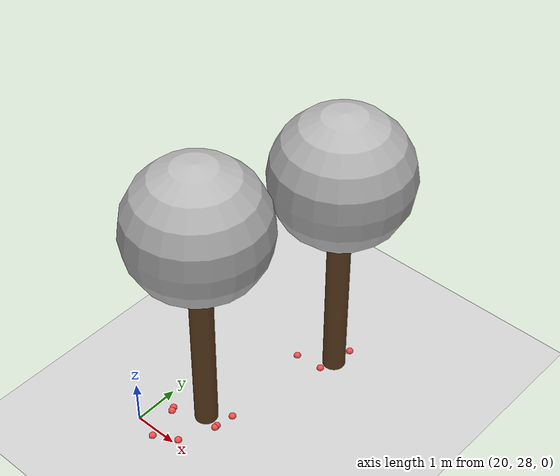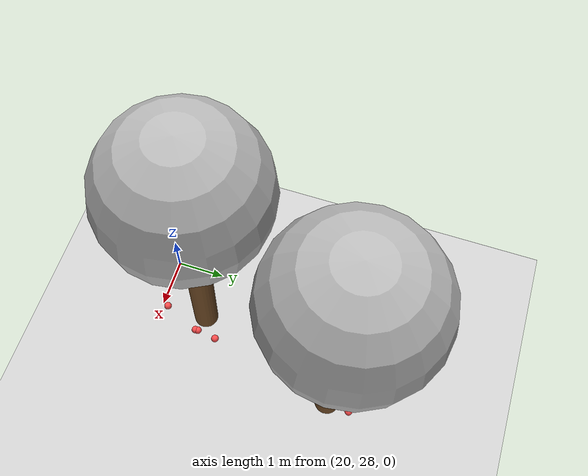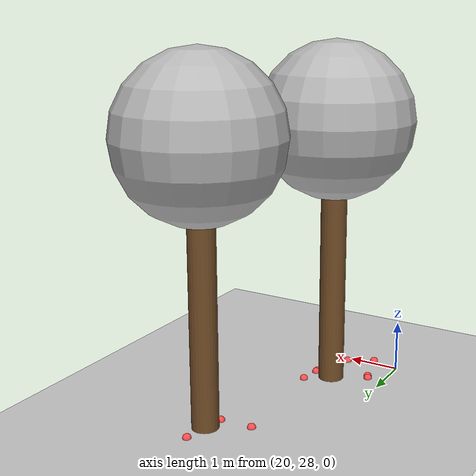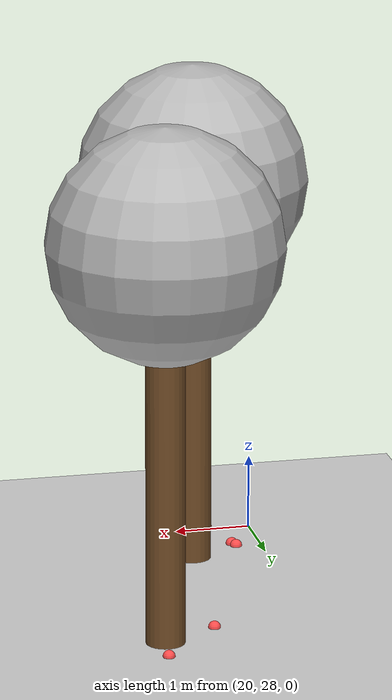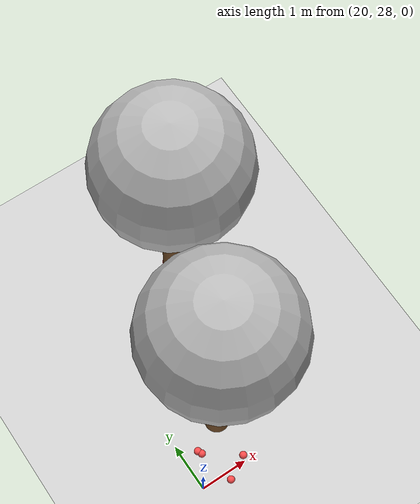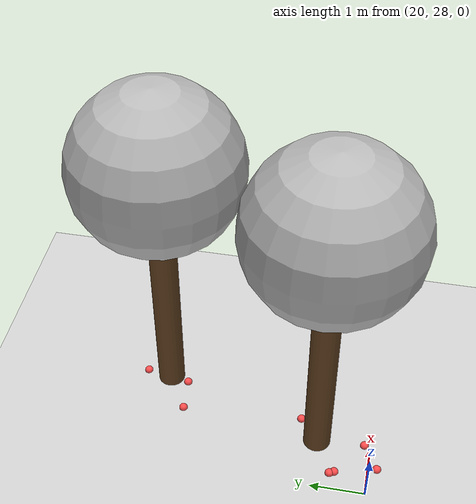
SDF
<sdf version="1.7">
 <world name="default">
  <model name="ground_plane">
   <static>1</static>
   <link name="link">
    <collision name="collision">
     <geometry><plane><normal>0 0 1</normal><size>100 100</size></plane></geometry>
     <surface>
      <contact><collide_bitmask>65535</collide_bitmask></contact>
      <friction><ode><mu>100</mu><mu2>50</mu2></ode></friction>
     </surface>
    </collision>
    <visual name="visual">
     <cast_shadows>0</cast_shadows>
     <geometry><plane><normal>0 0 1</normal><size>100 100</size></plane></geometry>
     <material>
      <script><uri>file://media/materials/scripts/gazebo.material</uri><name>Gazebo/Grey</name></script>
     </material>
    </visual>
   </link>
  </model>
  <model name="tree_simple_23">
   <static>1</static>
   <link name="link">
    <pose>0 0 0.1 0 -0 0</pose>
    <inertial>
     <mass>666</mass>
     <inertia>
      <ixx>0.0861167</ixx>
      <ixy>0</ixy>
      <ixz>0</ixz>
      <iyy>0.0861167</iyy>
      <iyz>0</iyz>
      <izz>0.0861167</izz>
     </inertia>
    </inertial>
    <collision name="collision_trunk">
     <pose>0 0 2 0 -0 0</pose>
     <geometry><cylinder><radius>0.25</radius><length>4</length></cylinder></geometry>
     <surface>
      <contact>
       <poissons_ratio>0.347</poissons_ratio>
       <elastic_modulus>8.8e+09</elastic_modulus>
       <ode><kp>100000</kp><kd>100</kd><max_vel>100</max_vel><min_depth>0.001</min_depth></ode>
      </contact>
      <friction>
       <torsional>
        <coefficient>1</coefficient>
        <use_patch_radius>0</use_patch_radius>
        <surface_radius>0.01</surface_radius>
       </torsional>
      </friction>
     </surface>
    </collision>
    <collision name="collision_treetop">
     <pose>0 0 5.2 0 -0 0</pose>
     <geometry><sphere><radius>1.5</radius></sphere></geometry>
     <surface>
      <contact>
       <poissons_ratio>0.347</poissons_ratio>
       <elastic_modulus>8.8e+09</elastic_modulus>
       <ode><kp>100000</kp><kd>100</kd><max_vel>100</max_vel><min_depth>0.001</min_depth></ode>
      </contact>
      <friction>
       <torsional>
        <coefficient>1</coefficient>
        <use_patch_radius>0</use_patch_radius>
        <surface_radius>0.01</surface_radius>
       </torsional>
      </friction>
     </surface>
    </collision>
    <visual name="trunk">
     <pose>0 0 2 0 -0 0</pose>
     <geometry><cylinder><radius>0.25</radius><length>4</length></cylinder></geometry>
     <material>
      <script>
       <uri>model://tree_simple/scripts</uri>
       <uri>model://tree_simple/materials/textures</uri>
       <name>TreeSimple/Trunk</name>
      </script>
     </material>
    </visual>
    <visual name="treetop">
     <pose>0 0 5.2 0 -0 0</pose>
     <geometry><sphere><radius>1.5</radius></sphere></geometry>
     <material>
      <script>
       <uri>model://tree_simple/scripts</uri>
       <uri>model://tree_simple/materials/textures</uri>
       <name>TreeSimple/Treetop</name>
      </script>
     </material>
    </visual>
   </link>
   <pose>22 32 -0.1 0 -0 0</pose>
  </model>
  <model name="tree_simple_30">
   <static>1</static>
   <link name="link">
    <pose>0 0 0.1 0 -0 0</pose>
    <inertial>
     <mass>666</mass>
     <inertia>
      <ixx>0.0861167</ixx>
      <ixy>0</ixy>
      <ixz>0</ixz>
      <iyy>0.0861167</iyy>
      <iyz>0</iyz>
      <izz>0.0861167</izz>
     </inertia>
    </inertial>
    <collision name="collision_trunk">
     <pose>0 0 2 0 -0 0</pose>
     <geometry><cylinder><radius>0.25</radius><length>4</length></cylinder></geometry>
     <surface>
      <contact>
       <poissons_ratio>0.347</poissons_ratio>
       <elastic_modulus>8.8e+09</elastic_modulus>
       <ode><kp>100000</kp><kd>100</kd><max_vel>100</max_vel><min_depth>0.001</min_depth></ode>
      </contact>
      <friction>
       <torsional>
        <coefficient>1</coefficient>
        <use_patch_radius>0</use_patch_radius>
        <surface_radius>0.01</surface_radius>
       </torsional>
      </friction>
     </surface>
    </collision>
    <collision name="collision_treetop">
     <pose>0 0 5.2 0 -0 0</pose>
     <geometry><sphere><radius>1.5</radius></sphere></geometry>
     <surface>
      <contact>
       <poissons_ratio>0.347</poissons_ratio>
       <elastic_modulus>8.8e+09</elastic_modulus>
       <ode><kp>100000</kp><kd>100</kd><max_vel>100</max_vel><min_depth>0.001</min_depth></ode>
      </contact>
      <friction>
       <torsional>
        <coefficient>1</coefficient>
        <use_patch_radius>0</use_patch_radius>
        <surface_radius>0.01</surface_radius>
       </torsional>
      </friction>
     </surface>
    </collision>
    <visual name="trunk">
     <pose>0 0 2 0 -0 0</pose>
     <geometry><cylinder><radius>0.25</radius><length>4</length></cylinder></geometry>
     <material>
      <script>
       <uri>model://tree_simple/scripts</uri>
       <uri>model://tree_simple/materials/textures</uri>
       <name>TreeSimple/Trunk</name>
      </script>
     </material>
    </visual>
    <visual name="treetop">
     <pose>0 0 5.2 0 -0 0</pose>
     <geometry><sphere><radius>1.5</radius></sphere></geometry>
     <material>
      <script>
       <uri>model://tree_simple/scripts</uri>
       <uri>model://tree_simple/materials/textures</uri>
       <name>TreeSimple/Treetop</name>
      </script>
     </material>
    </visual>
   </link>
   <pose>21 29 -0.1 0 -0 0</pose>
  </model>
  <model name="seed_red_93">
   <link name="link">
    <inertial>
     <mass>1</mass>
     <inertia><ixx>0.1</ixx><ixy>0</ixy><ixz>0</ixz><iyy>0.1</iyy><iyz>0</iyz><izz>0.1</izz></inertia>
    </inertial>
    <visual name="visual">
     <geometry><sphere><radius>0.08</radius></sphere></geometry>
     <material>
      <script><name>Gazebo/Grey</name><uri>file://media/materials/scripts/gazebo.material</uri></script>
      <shader type="pixel"><normal_map>__default__</normal_map></shader>
      <ambient>1 0.3 0.3 1</ambient>
      <diffuse>0.7 0.7 0.7 1</diffuse>
      <specular>0.01 0.01 0.01 1</specular>
      <emissive>0 0 0 1</emissive>
     </material>
    </visual>
    <collision name="collision">
     <geometry><sphere><radius>0.0005</radius></sphere></geometry>
     <surface>
      <friction>
       <ode><mu>1</mu><mu2>1</mu2><fdir1>0 0 0</fdir1><slip1>0</slip1><slip2>0</slip2></ode>
       <torsional>
        <coefficient>1</coefficient>
        <patch_radius>0</patch_radius>
        <surface_radius>0</surface_radius>
        <use_patch_radius>1</use_patch_radius>
        <ode><slip>0</slip></ode>
       </torsional>
      </friction>
      <bounce><restitution_coefficient>0</restitution_coefficient><threshold>1e+06</threshold></bounce>
      <contact>
       <collide_without_contact>0</collide_without_contact>
       <collide_without_contact_bitmask>1</collide_without_contact_bitmask>
       <collide_bitmask>1</collide_bitmask>
       <ode>
        <soft_cfm>0</soft_cfm>
        <soft_erp>0.2</soft_erp>
        <kp>1e+13</kp>
        <kd>1</kd>
        <max_vel>0.01</max_vel>
        <min_depth>0</min_depth>
       </ode>
       <bullet>
        <split_impulse>1</split_impulse>
        <split_impulse_penetration_threshold>-0.01</split_impulse_penetration_threshold>
        <soft_cfm>0</soft_cfm>
        <soft_erp>0.2</soft_erp>
        <kp>1e+13</kp>
        <kd>1</kd>
       </bullet>
      </contact>
     </surface>
    </collision>
   </link>
   <static>0</static>
   <pose>21.2793 31.6039 0.0005 0 -0 0</pose>
  </model>
  <model name="seed_red_96">
   <link name="link">
    <inertial>
     <mass>1</mass>
     <inertia><ixx>0.1</ixx><ixy>0</ixy><ixz>0</ixz><iyy>0.1</iyy><iyz>0</iyz><izz>0.1</izz></inertia>
    </inertial>
    <visual name="visual">
     <geometry><sphere><radius>0.08</radius></sphere></geometry>
     <material>
      <script><name>Gazebo/Grey</name><uri>file://media/materials/scripts/gazebo.material</uri></script>
      <shader type="pixel"><normal_map>__default__</normal_map></shader>
      <ambient>1 0.3 0.3 1</ambient>
      <diffuse>0.7 0.7 0.7 1</diffuse>
      <specular>0.01 0.01 0.01 1</specular>
      <emissive>0 0 0 1</emissive>
     </material>
    </visual>
    <collision name="collision">
     <geometry><sphere><radius>0.0005</radius></sphere></geometry>
     <surface>
      <friction>
       <ode><mu>1</mu><mu2>1</mu2><fdir1>0 0 0</fdir1><slip1>0</slip1><slip2>0</slip2></ode>
       <torsional>
        <coefficient>1</coefficient>
        <patch_radius>0</patch_radius>
        <surface_radius>0</surface_radius>
        <use_patch_radius>1</use_patch_radius>
        <ode><slip>0</slip></ode>
       </torsional>
      </friction>
      <bounce><restitution_coefficient>0</restitution_coefficient><threshold>1e+06</threshold></bounce>
      <contact>
       <collide_without_contact>0</collide_without_contact>
       <collide_without_contact_bitmask>1</collide_without_contact_bitmask>
       <collide_bitmask>1</collide_bitmask>
       <ode>
        <soft_cfm>0</soft_cfm>
        <soft_erp>0.2</soft_erp>
        <kp>1e+13</kp>
        <kd>1</kd>
        <max_vel>0.01</max_vel>
        <min_depth>0</min_depth>
       </ode>
       <bullet>
        <split_impulse>1</split_impulse>
        <split_impulse_penetration_threshold>-0.01</split_impulse_penetration_threshold>
        <soft_cfm>0</soft_cfm>
        <soft_erp>0.2</soft_erp>
        <kp>1e+13</kp>
        <kd>1</kd>
       </bullet>
      </contact>
     </surface>
    </collision>
   </link>
   <static>0</static>
   <pose>22.0587 32.4832 0.0005 0 -0 0</pose>
  </model>
  <model name="seed_red_98">
   <link name="link">
    <inertial>
     <mass>1</mass>
     <inertia><ixx>0.1</ixx><ixy>0</ixy><ixz>0</ixz><iyy>0.1</iyy><iyz>0</iyz><izz>0.1</izz></inertia>
    </inertial>
    <visual name="visual">
     <geometry><sphere><radius>0.08</radius></sphere></geometry>
     <material>
      <script><name>Gazebo/Grey</name><uri>file://media/materials/scripts/gazebo.material</uri></script>
      <shader type="pixel"><normal_map>__default__</normal_map></shader>
      <ambient>1 0.3 0.3 1</ambient>
      <diffuse>0.7 0.7 0.7 1</diffuse>
      <specular>0.01 0.01 0.01 1</specular>
      <emissive>0 0 0 1</emissive>
     </material>
    </visual>
    <collision name="collision">
     <geometry><sphere><radius>0.0005</radius></sphere></geometry>
     <surface>
      <friction>
       <ode><mu>1</mu><mu2>1</mu2><fdir1>0 0 0</fdir1><slip1>0</slip1><slip2>0</slip2></ode>
       <torsional>
        <coefficient>1</coefficient>
        <patch_radius>0</patch_radius>
        <surface_radius>0</surface_radius>
        <use_patch_radius>1</use_patch_radius>
        <ode><slip>0</slip></ode>
       </torsional>
      </friction>
      <bounce><restitution_coefficient>0</restitution_coefficient><threshold>1e+06</threshold></bounce>
      <contact>
       <collide_without_contact>0</collide_without_contact>
       <collide_without_contact_bitmask>1</collide_without_contact_bitmask>
       <collide_bitmask>1</collide_bitmask>
       <ode>
        <soft_cfm>0</soft_cfm>
        <soft_erp>0.2</soft_erp>
        <kp>1e+13</kp>
        <kd>1</kd>
        <max_vel>0.01</max_vel>
        <min_depth>0</min_depth>
       </ode>
       <bullet>
        <split_impulse>1</split_impulse>
        <split_impulse_penetration_threshold>-0.01</split_impulse_penetration_threshold>
        <soft_cfm>0</soft_cfm>
        <soft_erp>0.2</soft_erp>
        <kp>1e+13</kp>
        <kd>1</kd>
       </bullet>
      </contact>
     </surface>
    </collision>
   </link>
   <static>0</static>
   <pose>21.9038 31.6549 0.0005 0 -0 0</pose>
  </model>
  <model name="seed_red_132">
   <link name="link">
    <inertial>
     <mass>1</mass>
     <inertia><ixx>0.1</ixx><ixy>0</ixy><ixz>0</ixz><iyy>0.1</iyy><iyz>0</iyz><izz>0.1</izz></inertia>
    </inertial>
    <visual name="visual">
     <geometry><sphere><radius>0.08</radius></sphere></geometry>
     <material>
      <script><name>Gazebo/Grey</name><uri>file://media/materials/scripts/gazebo.material</uri></script>
      <shader type="pixel"><normal_map>__default__</normal_map></shader>
      <ambient>1 0.3 0.3 1</ambient>
      <diffuse>0.7 0.7 0.7 1</diffuse>
      <specular>0.01 0.01 0.01 1</specular>
      <emissive>0 0 0 1</emissive>
     </material>
    </visual>
    <collision name="collision">
     <geometry><sphere><radius>0.0005</radius></sphere></geometry>
     <surface>
      <friction>
       <ode><mu>1</mu><mu2>1</mu2><fdir1>0 0 0</fdir1><slip1>0</slip1><slip2>0</slip2></ode>
       <torsional>
        <coefficient>1</coefficient>
        <patch_radius>0</patch_radius>
        <surface_radius>0</surface_radius>
        <use_patch_radius>1</use_patch_radius>
        <ode><slip>0</slip></ode>
       </torsional>
      </friction>
      <bounce><restitution_coefficient>0</restitution_coefficient><threshold>1e+06</threshold></bounce>
      <contact>
       <collide_without_contact>0</collide_without_contact>
       <collide_without_contact_bitmask>1</collide_without_contact_bitmask>
       <collide_bitmask>1</collide_bitmask>
       <ode>
        <soft_cfm>0</soft_cfm>
        <soft_erp>0.2</soft_erp>
        <kp>1e+13</kp>
        <kd>1</kd>
        <max_vel>0.01</max_vel>
        <min_depth>0</min_depth>
       </ode>
       <bullet>
        <split_impulse>1</split_impulse>
        <split_impulse_penetration_threshold>-0.01</split_impulse_penetration_threshold>
        <soft_cfm>0</soft_cfm>
        <soft_erp>0.2</soft_erp>
        <kp>1e+13</kp>
        <kd>1</kd>
       </bullet>
      </contact>
     </surface>
    </collision>
   </link>
   <static>0</static>
   <pose>21.4298 29.3464 0.0005 0 -0 0</pose>
  </model>
  <model name="seed_red_133">
   <link name="link">
    <inertial>
     <mass>1</mass>
     <inertia><ixx>0.1</ixx><ixy>0</ixy><ixz>0</ixz><iyy>0.1</iyy><iyz>0</iyz><izz>0.1</izz></inertia>
    </inertial>
    <visual name="visual">
     <geometry><sphere><radius>0.08</radius></sphere></geometry>
     <material>
      <script><name>Gazebo/Grey</name><uri>file://media/materials/scripts/gazebo.material</uri></script>
      <shader type="pixel"><normal_map>__default__</normal_map></shader>
      <ambient>1 0.3 0.3 1</ambient>
      <diffuse>0.7 0.7 0.7 1</diffuse>
      <specular>0.01 0.01 0.01 1</specular>
      <emissive>0 0 0 1</emissive>
     </material>
    </visual>
    <collision name="collision">
     <geometry><sphere><radius>0.0005</radius></sphere></geometry>
     <surface>
      <friction>
       <ode><mu>1</mu><mu2>1</mu2><fdir1>0 0 0</fdir1><slip1>0</slip1><slip2>0</slip2></ode>
       <torsional>
        <coefficient>1</coefficient>
        <patch_radius>0</patch_radius>
        <surface_radius>0</surface_radius>
        <use_patch_radius>1</use_patch_radius>
        <ode><slip>0</slip></ode>
       </torsional>
      </friction>
      <bounce><restitution_coefficient>0</restitution_coefficient><threshold>1e+06</threshold></bounce>
      <contact>
       <collide_without_contact>0</collide_without_contact>
       <collide_without_contact_bitmask>1</collide_without_contact_bitmask>
       <collide_bitmask>1</collide_bitmask>
       <ode>
        <soft_cfm>0</soft_cfm>
        <soft_erp>0.2</soft_erp>
        <kp>1e+13</kp>
        <kd>1</kd>
        <max_vel>0.01</max_vel>
        <min_depth>0</min_depth>
       </ode>
       <bullet>
        <split_impulse>1</split_impulse>
        <split_impulse_penetration_threshold>-0.01</split_impulse_penetration_threshold>
        <soft_cfm>0</soft_cfm>
        <soft_erp>0.2</soft_erp>
        <kp>1e+13</kp>
        <kd>1</kd>
       </bullet>
      </contact>
     </surface>
    </collision>
   </link>
   <static>0</static>
   <pose>21.3694 28.8789 0.0005 0 -0 0</pose>
  </model>
  <model name="seed_red_134">
   <link name="link">
    <inertial>
     <mass>1</mass>
     <inertia><ixx>0.1</ixx><ixy>0</ixy><ixz>0</ixz><iyy>0.1</iyy><iyz>0</iyz><izz>0.1</izz></inertia>
    </inertial>
    <visual name="visual">
     <geometry><sphere><radius>0.08</radius></sphere></geometry>
     <material>
      <script><name>Gazebo/Grey</name><uri>file://media/materials/scripts/gazebo.material</uri></script>
      <shader type="pixel"><normal_map>__default__</normal_map></shader>
      <ambient>1 0.3 0.3 1</ambient>
      <diffuse>0.7 0.7 0.7 1</diffuse>
      <specular>0.01 0.01 0.01 1</specular>
      <emissive>0 0 0 1</emissive>
     </material>
    </visual>
    <collision name="collision">
     <geometry><sphere><radius>0.0005</radius></sphere></geometry>
     <surface>
      <friction>
       <ode><mu>1</mu><mu2>1</mu2><fdir1>0 0 0</fdir1><slip1>0</slip1><slip2>0</slip2></ode>
       <torsional>
        <coefficient>1</coefficient>
        <patch_radius>0</patch_radius>
        <surface_radius>0</surface_radius>
        <use_patch_radius>1</use_patch_radius>
        <ode><slip>0</slip></ode>
       </torsional>
      </friction>
      <bounce><restitution_coefficient>0</restitution_coefficient><threshold>1e+06</threshold></bounce>
      <contact>
       <collide_without_contact>0</collide_without_contact>
       <collide_without_contact_bitmask>1</collide_without_contact_bitmask>
       <collide_bitmask>1</collide_bitmask>
       <ode>
        <soft_cfm>0</soft_cfm>
        <soft_erp>0.2</soft_erp>
        <kp>1e+13</kp>
        <kd>1</kd>
        <max_vel>0.01</max_vel>
        <min_depth>0</min_depth>
       </ode>
       <bullet>
        <split_impulse>1</split_impulse>
        <split_impulse_penetration_threshold>-0.01</split_impulse_penetration_threshold>
        <soft_cfm>0</soft_cfm>
        <soft_erp>0.2</soft_erp>
        <kp>1e+13</kp>
        <kd>1</kd>
       </bullet>
      </contact>
     </surface>
    </collision>
   </link>
   <static>0</static>
   <pose>21.0396 28.1156 0.0005 0 -0 0</pose>
  </model>
  <model name="seed_red_135">
   <link name="link">
    <inertial>
     <mass>1</mass>
     <inertia><ixx>0.1</ixx><ixy>0</ixy><ixz>0</ixz><iyy>0.1</iyy><iyz>0</iyz><izz>0.1</izz></inertia>
    </inertial>
    <visual name="visual">
     <geometry><sphere><radius>0.08</radius></sphere></geometry>
     <material>
      <script><name>Gazebo/Grey</name><uri>file://media/materials/scripts/gazebo.material</uri></script>
      <shader type="pixel"><normal_map>__default__</normal_map></shader>
      <ambient>1 0.3 0.3 1</ambient>
      <diffuse>0.7 0.7 0.7 1</diffuse>
      <specular>0.01 0.01 0.01 1</specular>
      <emissive>0 0 0 1</emissive>
     </material>
    </visual>
    <collision name="collision">
     <geometry><sphere><radius>0.0005</radius></sphere></geometry>
     <surface>
      <friction>
       <ode><mu>1</mu><mu2>1</mu2><fdir1>0 0 0</fdir1><slip1>0</slip1><slip2>0</slip2></ode>
       <torsional>
        <coefficient>1</coefficient>
        <patch_radius>0</patch_radius>
        <surface_radius>0</surface_radius>
        <use_patch_radius>1</use_patch_radius>
        <ode><slip>0</slip></ode>
       </torsional>
      </friction>
      <bounce><restitution_coefficient>0</restitution_coefficient><threshold>1e+06</threshold></bounce>
      <contact>
       <collide_without_contact>0</collide_without_contact>
       <collide_without_contact_bitmask>1</collide_without_contact_bitmask>
       <collide_bitmask>1</collide_bitmask>
       <ode>
        <soft_cfm>0</soft_cfm>
        <soft_erp>0.2</soft_erp>
        <kp>1e+13</kp>
        <kd>1</kd>
        <max_vel>0.01</max_vel>
        <min_depth>0</min_depth>
       </ode>
       <bullet>
        <split_impulse>1</split_impulse>
        <split_impulse_penetration_threshold>-0.01</split_impulse_penetration_threshold>
        <soft_cfm>0</soft_cfm>
        <soft_erp>0.2</soft_erp>
        <kp>1e+13</kp>
        <kd>1</kd>
       </bullet>
      </contact>
     </surface>
    </collision>
   </link>
   <static>0</static>
   <pose>21.3666 28.9326 0.0005 0 -0 0</pose>
  </model>
  <model name="seed_red_136">
   <link name="link">
    <inertial>
     <mass>1</mass>
     <inertia><ixx>0.1</ixx><ixy>0</ixy><ixz>0</ixz><iyy>0.1</iyy><iyz>0</iyz><izz>0.1</izz></inertia>
    </inertial>
    <visual name="visual">
     <geometry><sphere><radius>0.08</radius></sphere></geometry>
     <material>
      <script><name>Gazebo/Grey</name><uri>file://media/materials/scripts/gazebo.material</uri></script>
      <shader type="pixel"><normal_map>__default__</normal_map></shader>
      <ambient>1 0.3 0.3 1</ambient>
      <diffuse>0.7 0.7 0.7 1</diffuse>
      <specular>0.01 0.01 0.01 1</specular>
      <emissive>0 0 0 1</emissive>
     </material>
    </visual>
    <collision name="collision">
     <geometry><sphere><radius>0.0005</radius></sphere></geometry>
     <surface>
      <friction>
       <ode><mu>1</mu><mu2>1</mu2><fdir1>0 0 0</fdir1><slip1>0</slip1><slip2>0</slip2></ode>
       <torsional>
        <coefficient>1</coefficient>
        <patch_radius>0</patch_radius>
        <surface_radius>0</surface_radius>
        <use_patch_radius>1</use_patch_radius>
        <ode><slip>0</slip></ode>
       </torsional>
      </friction>
      <bounce><restitution_coefficient>0</restitution_coefficient><threshold>1e+06</threshold></bounce>
      <contact>
       <collide_without_contact>0</collide_without_contact>
       <collide_without_contact_bitmask>1</collide_without_contact_bitmask>
       <collide_bitmask>1</collide_bitmask>
       <ode>
        <soft_cfm>0</soft_cfm>
        <soft_erp>0.2</soft_erp>
        <kp>1e+13</kp>
        <kd>1</kd>
        <max_vel>0.01</max_vel>
        <min_depth>0</min_depth>
       </ode>
       <bullet>
        <split_impulse>1</split_impulse>
        <split_impulse_penetration_threshold>-0.01</split_impulse_penetration_threshold>
        <soft_cfm>0</soft_cfm>
        <soft_erp>0.2</soft_erp>
        <kp>1e+13</kp>
        <kd>1</kd>
       </bullet>
      </contact>
     </surface>
    </collision>
   </link>
   <static>0</static>
   <pose>20.3293 28.6823 0.0005 0 -0 0</pose>
  </model>
  <model name="seed_red_137">
   <link name="link">
    <inertial>
     <mass>1</mass>
     <inertia><ixx>0.1</ixx><ixy>0</ixy><ixz>0</ixz><iyy>0.1</iyy><iyz>0</iyz><izz>0.1</izz></inertia>
    </inertial>
    <visual name="visual">
     <geometry><sphere><radius>0.08</radius></sphere></geometry>
     <material>
      <script><name>Gazebo/Grey</name><uri>file://media/materials/scripts/gazebo.material</uri></script>
      <shader type="pixel"><normal_map>__default__</normal_map></shader>
      <ambient>1 0.3 0.3 1</ambient>
      <diffuse>0.7 0.7 0.7 1</diffuse>
      <specular>0.01 0.01 0.01 1</specular>
      <emissive>0 0 0 1</emissive>
     </material>
    </visual>
    <collision name="collision">
     <geometry><sphere><radius>0.0005</radius></sphere></geometry>
     <surface>
      <friction>
       <ode><mu>1</mu><mu2>1</mu2><fdir1>0 0 0</fdir1><slip1>0</slip1><slip2>0</slip2></ode>
       <torsional>
        <coefficient>1</coefficient>
        <patch_radius>0</patch_radius>
        <surface_radius>0</surface_radius>
        <use_patch_radius>1</use_patch_radius>
        <ode><slip>0</slip></ode>
       </torsional>
      </friction>
      <bounce><restitution_coefficient>0</restitution_coefficient><threshold>1e+06</threshold></bounce>
      <contact>
       <collide_without_contact>0</collide_without_contact>
       <collide_without_contact_bitmask>1</collide_without_contact_bitmask>
       <collide_bitmask>1</collide_bitmask>
       <ode>
        <soft_cfm>0</soft_cfm>
        <soft_erp>0.2</soft_erp>
        <kp>1e+13</kp>
        <kd>1</kd>
        <max_vel>0.01</max_vel>
        <min_depth>0</min_depth>
       </ode>
       <bullet>
        <split_impulse>1</split_impulse>
        <split_impulse_penetration_threshold>-0.01</split_impulse_penetration_threshold>
        <soft_cfm>0</soft_cfm>
        <soft_erp>0.2</soft_erp>
        <kp>1e+13</kp>
        <kd>1</kd>
       </bullet>
      </contact>
     </surface>
    </collision>
   </link>
   <static>0</static>
   <pose>20.5573 27.844 0.0005 0 -0 0</pose>
  </model>
  <model name="seed_red_138">
   <link name="link">
    <inertial>
     <mass>1</mass>
     <inertia><ixx>0.1</ixx><ixy>0</ixy><ixz>0</ixz><iyy>0.1</iyy><iyz>0</iyz><izz>0.1</izz></inertia>
    </inertial>
    <visual name="visual">
     <geometry><sphere><radius>0.08</radius></sphere></geometry>
     <material>
      <script><name>Gazebo/Grey</name><uri>file://media/materials/scripts/gazebo.material</uri></script>
      <shader type="pixel"><normal_map>__default__</normal_map></shader>
      <ambient>1 0.3 0.3 1</ambient>
      <diffuse>0.7 0.7 0.7 1</diffuse>
      <specular>0.01 0.01 0.01 1</specular>
      <emissive>0 0 0 1</emissive>
     </material>
    </visual>
    <collision name="collision">
     <geometry><sphere><radius>0.0005</radius></sphere></geometry>
     <surface>
      <friction>
       <ode><mu>1</mu><mu2>1</mu2><fdir1>0 0 0</fdir1><slip1>0</slip1><slip2>0</slip2></ode>
       <torsional>
        <coefficient>1</coefficient>
        <patch_radius>0</patch_radius>
        <surface_radius>0</surface_radius>
        <use_patch_radius>1</use_patch_radius>
        <ode><slip>0</slip></ode>
       </torsional>
      </friction>
      <bounce><restitution_coefficient>0</restitution_coefficient><threshold>1e+06</threshold></bounce>
      <contact>
       <collide_without_contact>0</collide_without_contact>
       <collide_without_contact_bitmask>1</collide_without_contact_bitmask>
       <collide_bitmask>1</collide_bitmask>
       <ode>
        <soft_cfm>0</soft_cfm>
        <soft_erp>0.2</soft_erp>
        <kp>1e+13</kp>
        <kd>1</kd>
        <max_vel>0.01</max_vel>
        <min_depth>0</min_depth>
       </ode>
       <bullet>
        <split_impulse>1</split_impulse>
        <split_impulse_penetration_threshold>-0.01</split_impulse_penetration_threshold>
        <soft_cfm>0</soft_cfm>
        <soft_erp>0.2</soft_erp>
        <kp>1e+13</kp>
        <kd>1</kd>
       </bullet>
      </contact>
     </surface>
    </collision>
   </link>
   <static>0</static>
   <pose>20.3688 28.5994 0.0005 0 -0 0</pose>
  </model>
 </world>
</sdf>
